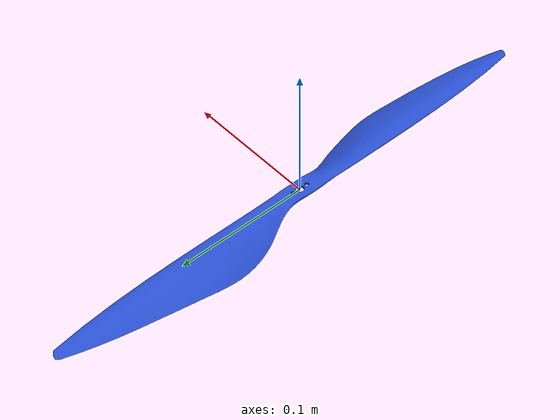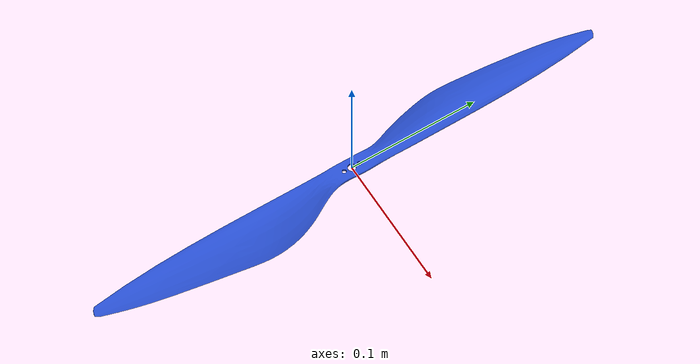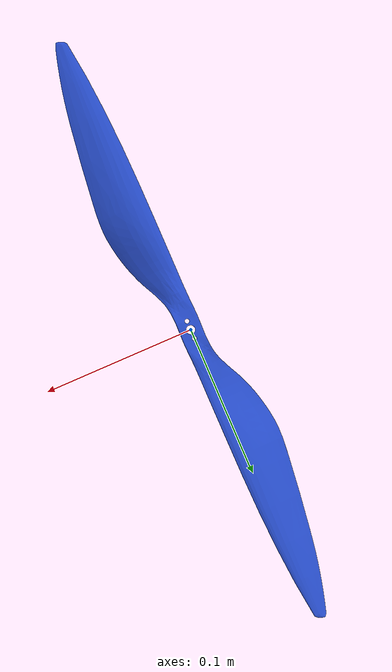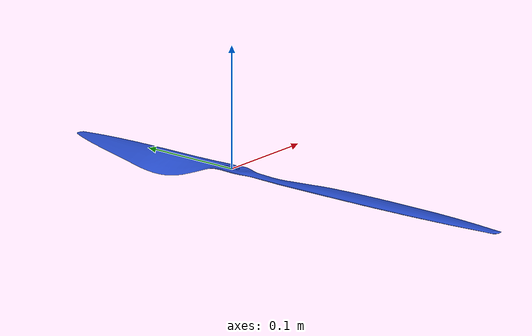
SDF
<?xml version="1.0" ?>

  <sdf version="1.5">
    <model name="arduwoodpecker_prop_cw">
      <link name='prop'>
      <pose>0.0 -0.0 0.0 0 -0 0</pose>
      <inertial>
        <pose>0 0 0 0 -0 0</pose>
        <mass>0.025</mass>
        <inertia>
          <ixx>9.75e-06</ixx>
          <ixy>0</ixy>
          <ixz>0</ixz>
          <iyy>0.000166704</iyy>
          <iyz>0</iyz>
          <izz>0.000167604</izz>
        </inertia>
      </inertial>
      <collision name='rotor_0_collision'>
        <pose>0 0 0 0 -0 0</pose>
        <geometry>
          <cylinder>
            <length>0.005</length>
            <radius>0.2</radius>
          </cylinder>
        </geometry>
        <surface>
          <contact>
            <ode />
          </contact>
          <friction>
            <ode />
          </friction>
        </surface>
      </collision>
      <visual name='prop_visual'>
        <pose>0 0 0 0 -0 0</pose>
        <geometry>
          <mesh>
            <scale>1 1 1</scale>
            <uri>model://arduwoodpecker_prop_cw/meshes/prop_cw.dae</uri>
          </mesh>
        </geometry>
        <material>
          <script>
            <name>Gazebo/Blue</name>
            <uri>__default__</uri>
          </script>
        </material>
      </visual>
      <gravity>1</gravity>
      <velocity_decay />
      <self_collide>0</self_collide>
    </link>
  </model>
</sdf>
